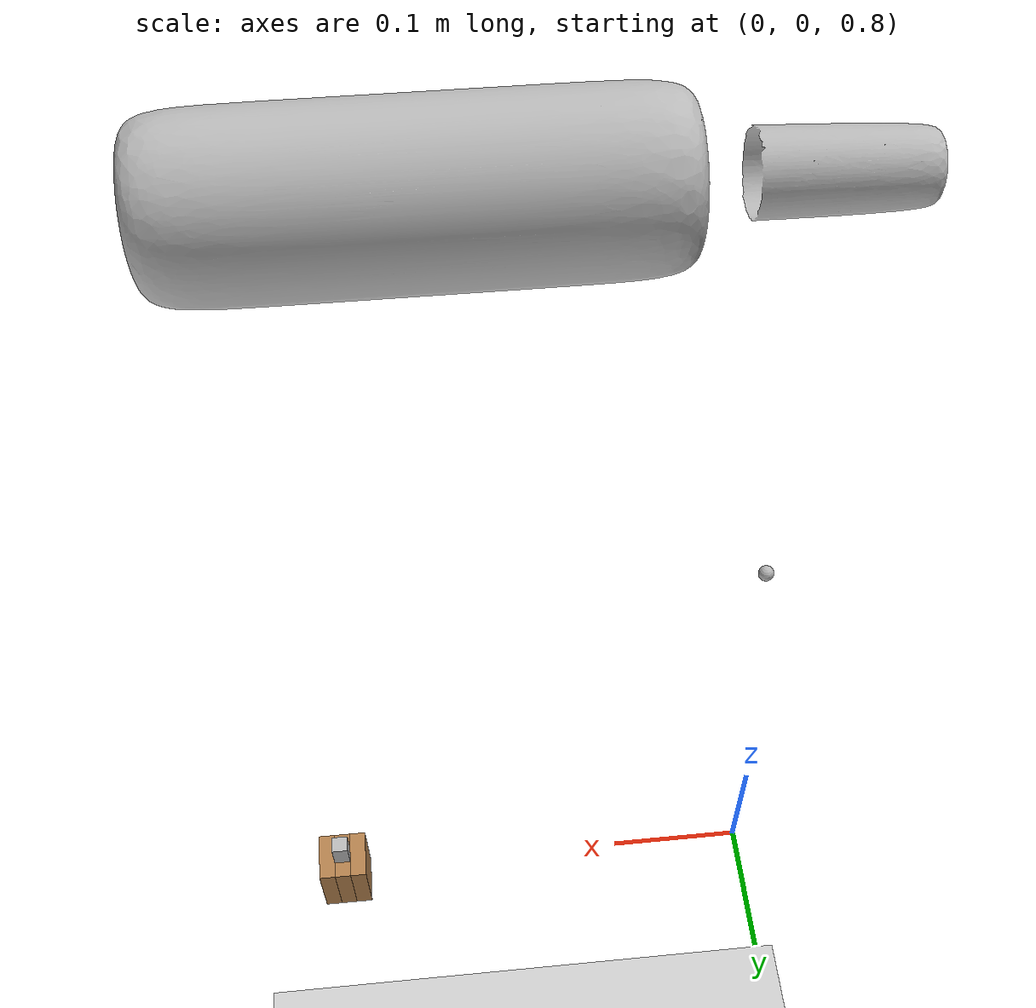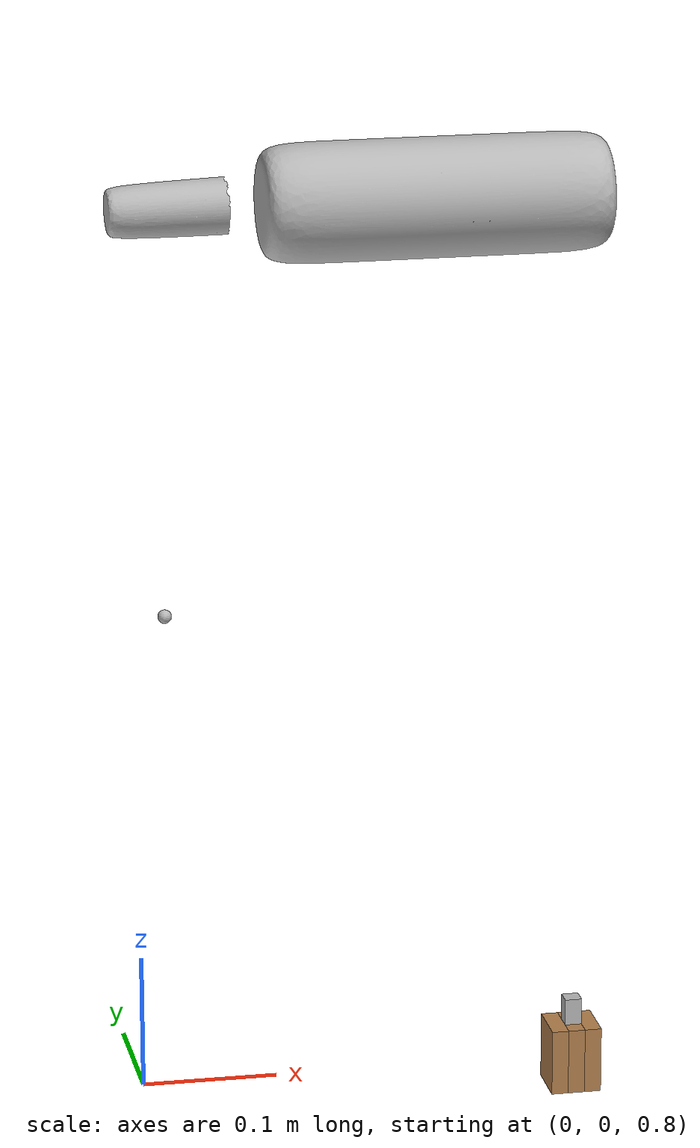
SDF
<sdf version="1.6">
 <world name="Hammering">
  <include><uri>model://ground_plane</uri></include>
  <include><uri>model://sun</uri></include>
  <include><uri>model://tool_hammering_nail</uri></include>
  <include><uri>model://nail</uri></include>
  <plugin filename="libmeasure_nail_distance.so" name="measure_nail_distance"/>
 </world>
</sdf>

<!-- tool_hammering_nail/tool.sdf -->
<sdf version='1.6'>
<model name="hammer">
<static>false</static>
<pose> 0 0 0.775 0 0 0 </pose>

<link name='tool'>
	<pose>0.0247 0.0000 0.6880 0.000 0.000 0.000</pose>
	<inertial>
		<pose>0.1785 -0.0001 0.0002 0 0 0</pose>
		<mass>0.1219</mass>
	</inertial>
	<collision name='tool_collision'>
		<geometry>
			<mesh><uri>model://tool_hammering_nail/tool.dae</uri></mesh>
		</geometry>
	</collision>
	<visual name='tool_visual'>
		<geometry>
			<mesh><uri>model://tool_hammering_nail/tool.dae</uri></mesh>
		</geometry>
	</visual>
	<sensor name='tool_contact' type='contact'>
		<plugin filename="libnail_collision.so" name="nail_collision" />
		<contact>
			<collision>tool_collision</collision>
		</contact>
	</sensor>
</link>

<model name="elbow_model">
	<pose>0.02 0.0000 0.3880 0 0 0</pose>
	<static>true</static>
	<link name="elbow_link">
		<pose>0 0 0 0 0 0</pose>
		<visual name="elbow_visual">
			<geometry><sphere>
				<radius>0.005</radius>
			</sphere></geometry>
		</visual>
	</link>
</model>

	<joint name="joint_elbow" type="revolute">
		<parent>tool</parent>
		<child>elbow_link</child>
		<axis>
			<xyz>0 1 0</xyz>
			<use_parent_model_frame>1</use_parent_model_frame>
			<dynamics>
				<friction>0.1</friction>
			</dynamics>
		</axis>
	</joint>

<plugin filename="libhammer.so" name="hammer"/>

</model>
</sdf>

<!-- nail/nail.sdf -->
<sdf version='1.6'>

    <model name="nail">
				<pose> 0 0 0.775 0 0 0 </pose>

<!-- nail -->

        <link name='nail'>
          <pose>0.325 0 0.06 0 0 0</pose>
            <inertial>
              <mass>0.1</mass>
            </inertial>
            <collision name='nail_collision'>
              <geometry>
                <box>
                  <size>.0125 .0125 .02</size>
                </box>
              </geometry>
              <surface>
                <friction>
                  <ode>
                    <mu>0.5</mu>
                    <mu2>0.5</mu2>
                  </ode>
                </friction>
              </surface>
            </collision>
            <visual name='nail_visual'>
              <geometry>
                <box>
                  <size>.0125 .0125 .02</size>
                </box>
              </geometry>
            </visual>
        </link>

<!-- wooden piece -->

				<model name='wooden_piece'>
				<static>true</static>

        <link name='bigbox1'>
          <pose>0.3125 0 0.025 0 0 0</pose>

            <collision name='bigbox1_collision'>
              <geometry>
                <box>
                  <size>.0125 .0375 .05</size>
                </box>
              </geometry>
              <surface>
                <friction>
                  <ode>
                    <mu>2000</mu>
                    <mu2>2000</mu2>
                  </ode>
                </friction>
              </surface>
            </collision>

            <visual name='bigbox1_visual'>
              <geometry>
                <box>
                  <size>.0125 .0375 .05</size>
                </box>
              </geometry>
              <material>
                <script>
                  <uri>file://media/materials/scripts/gazebo.material</uri>
                  <name>Gazebo/WoodFloor</name>
                </script>
              </material>
            </visual>
        </link>

        <link name='bigbox2'>
          <pose>0.3375 0 0.025 0 0 0</pose>

            <collision name='bigbox2_collision'>
              <geometry>
                <box>
                  <size>.0125 .0375 .05</size>
                </box>
              </geometry>
              <surface>
                <friction>
                  <ode>
                    <mu>2000</mu>
                    <mu2>2000</mu2>
                  </ode>
                </friction>
              </surface>
            </collision>

            <visual name='bigbox2_visual'>
              <geometry>
                <box>
                  <size>.0125 .0375 .05</size>
                </box>
              </geometry>
              <material>
                <script>
                  <uri>file://media/materials/scripts/gazebo.material</uri>
                  <name>Gazebo/WoodFloor</name>
                </script>
              </material>
            </visual>
        </link>

        <link name='smallbox1'>
          <pose>0.325 -0.0125 0.025 0 0 0</pose>

            <collision name='smallbox1_collision'>
              <geometry>
                <box>
                  <size>.0125 .0125 .05</size>
                </box>
              </geometry>
              <surface>
                <friction>
                  <ode>
                    <mu>2000</mu>
                    <mu2>2000</mu2>
                  </ode>
                </friction>
              </surface>
            </collision>

            <visual name='smallbox1_visual'>
              <geometry>
                <box>
                  <size>.0125 .0125 .05</size>
                </box>
              </geometry>
              <material>
                <script>
                  <uri>file://media/materials/scripts/gazebo.material</uri>
                  <name>Gazebo/WoodFloor</name>
                </script>
              </material>
            </visual>
        </link>

        <link name='smallbox2'>
          <pose>0.325 0.0125 0.025 0 0 0</pose>

            <collision name='smallbox2_collision'>
              <geometry>
                <box>
                  <size>.0125 .0125 .05</size>
                </box>
              </geometry>
              <surface>
                <friction>
                  <ode>
                    <mu>2000</mu>
                    <mu2>2000</mu2>
                  </ode>
                </friction>
              </surface>
            </collision>

            <visual name='smallbox2_visual'>
              <geometry>
                <box>
                  <size>.0125 .0125 .05</size>
                </box>
              </geometry>
              <material>
                <script>
                  <uri>file://media/materials/scripts/gazebo.material</uri>
                  <name>Gazebo/WoodFloor</name>
                </script>
              </material>
            </visual>
        </link>
				</model>

<!-- Joints -->

        <joint name="nail_big1_joint" type="prismatic">
          <pose>0 0 0.03 0 0 0</pose>
          <parent>nail</parent>
          <child>bigbox1</child>
          <axis>
            <xyz>0 0 1</xyz>
            <dynamics>
              <damping>10</damping>
              <friction>300</friction>
            </dynamics>
          </axis>
        </joint>

        <joint name="nail_big2_joint" type="prismatic">
          <pose>0 0 0.03 0 0 0</pose>
          <parent>nail</parent>
          <child>bigbox2</child>
          <axis>
            <xyz>0 0 1</xyz>
            <dynamics>
              <damping>10</damping>
              <friction>300</friction>
            </dynamics>
          </axis>
        </joint>

        <joint name="nail_small1_joint" type="prismatic">
          <pose>0 0 0.03 0 0 0</pose>
          <parent>nail</parent>
          <child>smallbox1</child>
          <axis>
            <xyz>0 0 1</xyz>
            <dynamics>
              <damping>10</damping>
              <friction>300</friction>
            </dynamics>
          </axis>
        </joint>

        <joint name="nail_small2_joint" type="prismatic">
          <pose>0 0 0.03 0 0 0</pose>
          <parent>nail</parent>
          <child>smallbox2</child>
          <axis>
            <xyz>0 0 1</xyz>
            <dynamics>
              <damping>10</damping>
              <friction>300</friction>
            </dynamics>
          </axis>
        </joint>

    </model>
</sdf>
